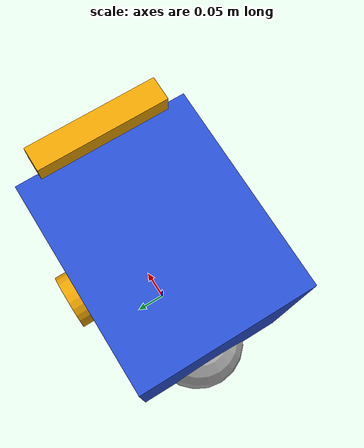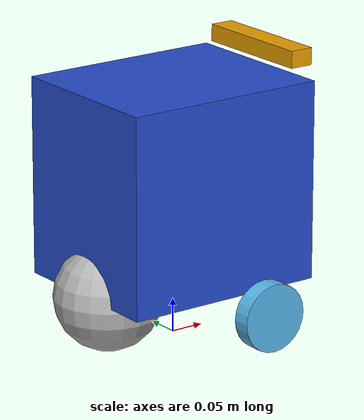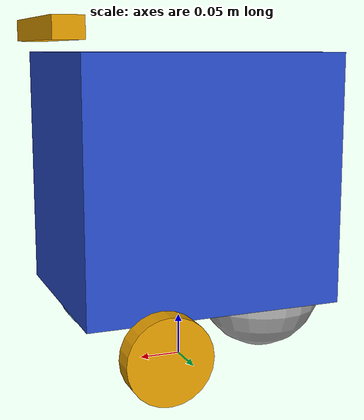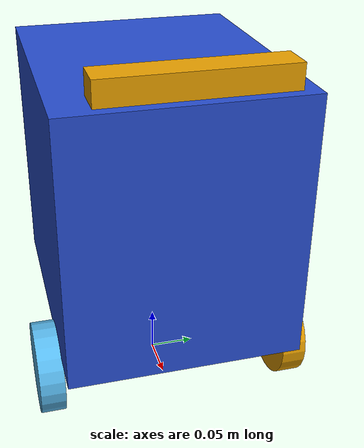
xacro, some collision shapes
<?xml version="1.0" encoding="utf-8"?>
<robot name="baybot" xmlns:xacro="http://www.ros.org/wiki/xacro">

  <xacro:include filename="$(find baybot_description)/urdf/xtion.urdf.xacro"/>
  <xacro:include filename="$(find baybot_description)/urdf/baybot.gazebo.xacro"/>

  <xacro:asus_camera name="xtion" parent="base_link">
    <origin xyz="0.155 0 0.4" rpy="0 0 0" />
  </xacro:asus_camera>

  <link name="base_footprint"/>

  <joint name="base_joint" type="fixed">
    <origin xyz="0 0 0" rpy="0 0 0" />
    <parent link="base_footprint"/>
    <child link="base_link" />
  </joint>

  <link name="base_link">
    <visual>
      <geometry>
        <box size="0.304 0.251 0.29"/>
      </geometry>
      <origin xyz="0 0 .23" rpy="0 0 0"/>
    </visual>
    <collision>
      <geometry>
        <box size="0.304 0.251 0.29"/>
      </geometry>
      <origin xyz="0 0 0.23" rpy="0 0 0"/>
    </collision>
    <inertial>
      <origin xyz="0 0 0"/>
      <mass value="0.5"/>
      <inertia ixx="0.01" ixy="0.0" ixz="0.0" iyy="0.01" iyz="0.0" izz="0.03" />
    </inertial>
  </link>

  <joint name="caster_back_joint" type="fixed">
    <parent link="base_link"/>
    <child link="caster_back_link"/>
    <origin xyz="-0.112 0 0.078" rpy="0 0 0"/>
  </joint>
  <link name="caster_back_link">
    <collision>
      <geometry>
        <sphere radius="0.078"/>
      </geometry>
      <origin rpy="0 0 0" xyz="0 0 0"/>
    </collision>
    <visual>
      <geometry>
        <sphere radius="0.078"/>
      </geometry>
      <origin rpy="0 0 0" xyz="0 0 0"/>
    </visual>
    <inertial>
      <mass value="0.1" />
      <origin xyz="0 0 0" />
      <inertia ixx="0.001023539" ixy="0.0" ixz="0.0" iyy="0.001023539" iyz="0.0" izz="0.001023539" />
    </inertial>
  </link>

  <joint name="l_wheel_joint" type="continuous">
    <parent link="base_link"/>
    <child link="wheel_left_link"/>
    <origin xyz="0.067 0.1378 0.05" rpy="-1.57 0 0"/>
    <axis xyz="0 0 1"/>
  </joint>
  <link name="wheel_left_link">
    <collision>
      <geometry>
        <cylinder length="0.027" radius="0.05"/>
      </geometry>
      <origin rpy="0.0 0.0 0" xyz="0 0 0.1"/>
    </collision>
    <visual name="visual">
      <geometry>
        <cylinder length="0.027" radius="0.05"/>
      </geometry>
      <origin rpy="0 0 0" xyz="0 0 0"/>
    </visual>
    <inertial>
      <mass value="0.4" />
      <origin xyz="0 0 0" />
      <inertia ixx="0.001" ixy="0.0" ixz="0.0" iyy="0.001" iyz="0.0" izz="0.001" />
    </inertial>
  </link>

  <joint name="r_wheel_joint" type="continuous">
    <parent link="base_link"/>
    <child link="wheel_right_link"/>
    <origin xyz="0.067 -0.1378 0.05" rpy="-1.57 0 0"/>
    <axis xyz="0 0 1"/>
  </joint>
  <link name="wheel_right_link">
    <collision>
      <geometry>
        <cylinder length="0.027" radius="0.05"/>
      </geometry>
      <origin rpy="0 0 0" xyz="0 0 0.195"/>
    </collision>
    <visual name="visual">
      <geometry>
        <cylinder length="0.027" radius="0.05"/>
      </geometry>
      <origin rpy="0 0 0" xyz="0 0 0"/>
    </visual>
    <inertial>
      <mass value="0.4" />
      <origin xyz="0 0 0.3" />
      <inertia ixx="0.001" ixy="0.0" ixz="0.0" iyy="0.001" iyz="0.0" izz="0.001" />
    </inertial>
  </link>

</robot>

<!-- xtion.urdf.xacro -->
<robot xmlns:xacro="http://www.ros.org/wiki/xacro">
  <xacro:property name="M_PI" value="3.1415926535897931" />

  <xacro:macro name="asus_camera_model" params="name parent *origin">
    <joint name="${name}_joint" type="fixed">
      <xacro:insert_block name="origin" />
      <parent link="${parent}"/>
      <child link="${name}_link"/>
    </joint>

    <link name="${name}_link">
      <inertial>
        <mass value="0.200" />
        <origin xyz="0 0 0" rpy="0 0 0" />
        <inertia ixx="5.8083e-4" ixy="0" ixz="0" iyy="3.0833e-5" iyz="0" izz="5.9083e-4" />
      </inertial>
      <visual>
        <origin xyz="0 0 0" rpy="0 0 0" />
        <geometry>
          <mesh filename="package://baybot_description/meshes/asus_camera_simple.dae"/>
        </geometry>
      </visual>
      <collision>
        <origin xyz="0 0 0" rpy="0 0 0" />
        <geometry>
          <box size="0.035 0.185 0.025"/>
        </geometry>
      </collision>
    </link>

    <joint name="${name}_depth_joint" type="fixed">
      <origin xyz="0.0 0.049 0.0" rpy="0 0 0" />
      <parent link="${name}_link" />
      <child link="${name}_depth_frame"/>
    </joint>
    <link name="${name}_depth_frame"/>
    <joint name="${name}_depth_optical_joint" type="fixed">
      <origin xyz="0 0 0" rpy="${-M_PI/2} 0.0 ${-M_PI/2}" />
      <parent link="${name}_depth_frame" />
      <child link="${name}_depth_optical_frame"/>
    </joint>
    <link name="${name}_depth_optical_frame"/>
    <joint name="${name}_rgb_joint" type="fixed">
      <origin xyz="0.0 0.022 0.0" rpy="0 0 0" />
      <parent link="${name}_link" />
      <child link="${name}_rgb_frame"/>
    </joint>
    <link name="${name}_rgb_frame"/>
    <joint name="${name}_rgb_optical_joint" type="fixed">
      <origin xyz="0 0 0" rpy="${-M_PI/2} 0.0 ${-M_PI/2}" />
      <parent link="${name}_rgb_frame" />
      <child link="${name}_rgb_optical_frame"/>
    </joint>
    <link name="${name}_rgb_optical_frame"/>
  </xacro:macro>

  <xacro:macro name="asus_camera" params="name parent *origin">
    <xacro:asus_camera_model name="${name}" parent="${parent}">
      <xacro:insert_block name="origin" />
    </xacro:asus_camera_model>

    <!-- ASUS Xtion PRO camera for simulation -->
    <gazebo reference="${name}_depth_frame">
      <sensor type="depth" name="${name}">
        <update_rate>20</update_rate>
        <camera>
          <horizontal_fov>${62.8 * M_PI/180.0}</horizontal_fov>
          <image>
            <format>R8G8B8</format>
            <width>640</width>
            <height>480</height>
          </image>
          <clip>
            <near>0.5</near>
            <far>9</far>
          </clip>
        </camera>
        <plugin name="${name}_camera_controller" filename="libgazebo_ros_openni_kinect.so">
          <alwaysOn>true</alwaysOn>
          <updateRate>20</updateRate>
          <imageTopicName>${name}/rgb/image_raw</imageTopicName>
          <cameraInfoTopicName>${name}/rgb/camera_info</cameraInfoTopicName>
          <depthImageTopicName>${name}/depth/image_raw</depthImageTopicName>
          <depthImageCameraInfoTopicName>${name}/depth/camera_info</depthImageCameraInfoTopicName>
          <pointCloudTopicName>${name}/depth/points</pointCloudTopicName>
          <frameName>${name}_depth_optical_frame</frameName>
          <distortion_k1>0.0</distortion_k1>
          <distortion_k2>0.0</distortion_k2>
          <distortion_k3>0.0</distortion_k3>
          <distortion_t1>0.0</distortion_t1>
          <distortion_t2>0.0</distortion_t2>
        </plugin>
      </sensor>
    </gazebo>
  </xacro:macro>
</robot>
